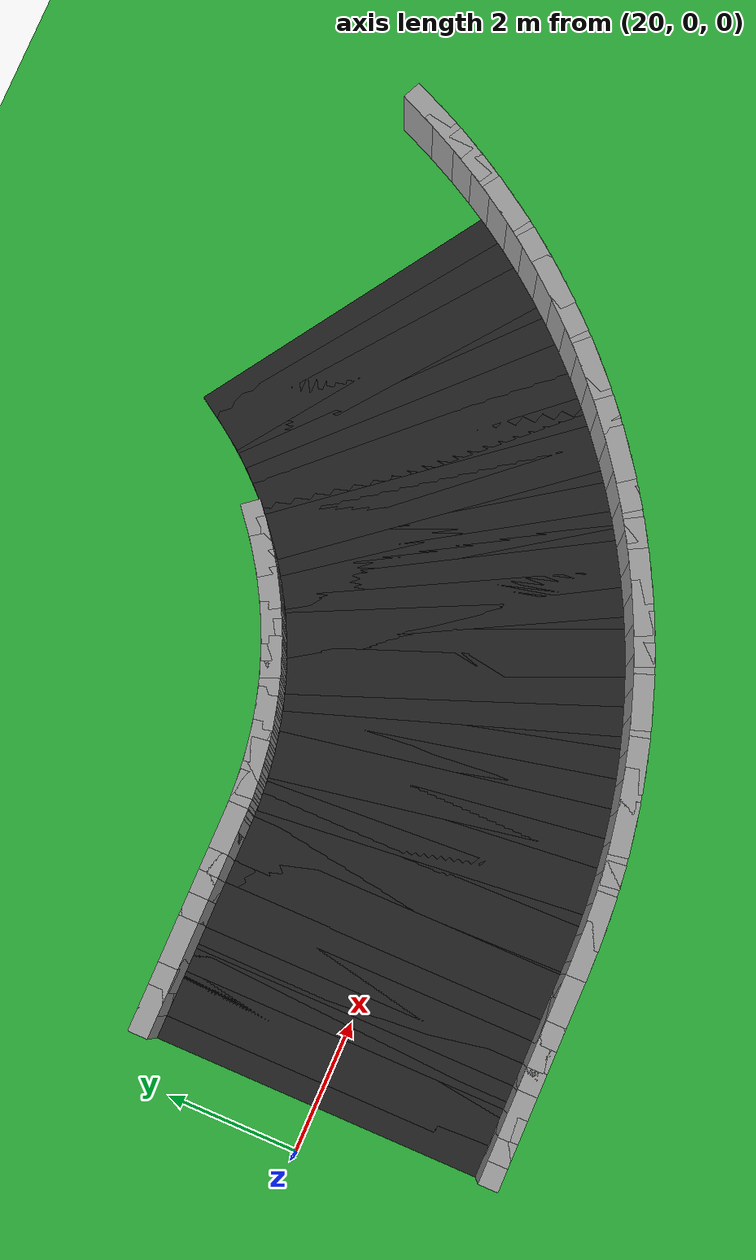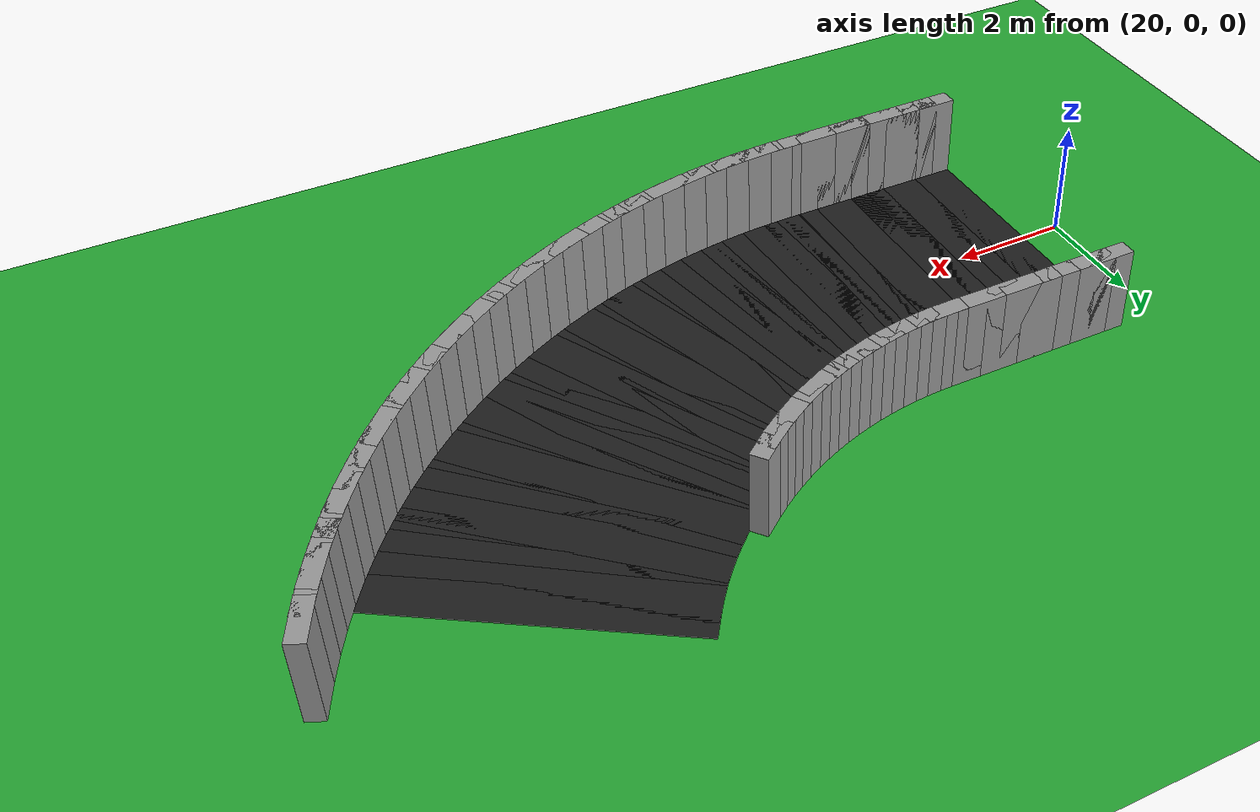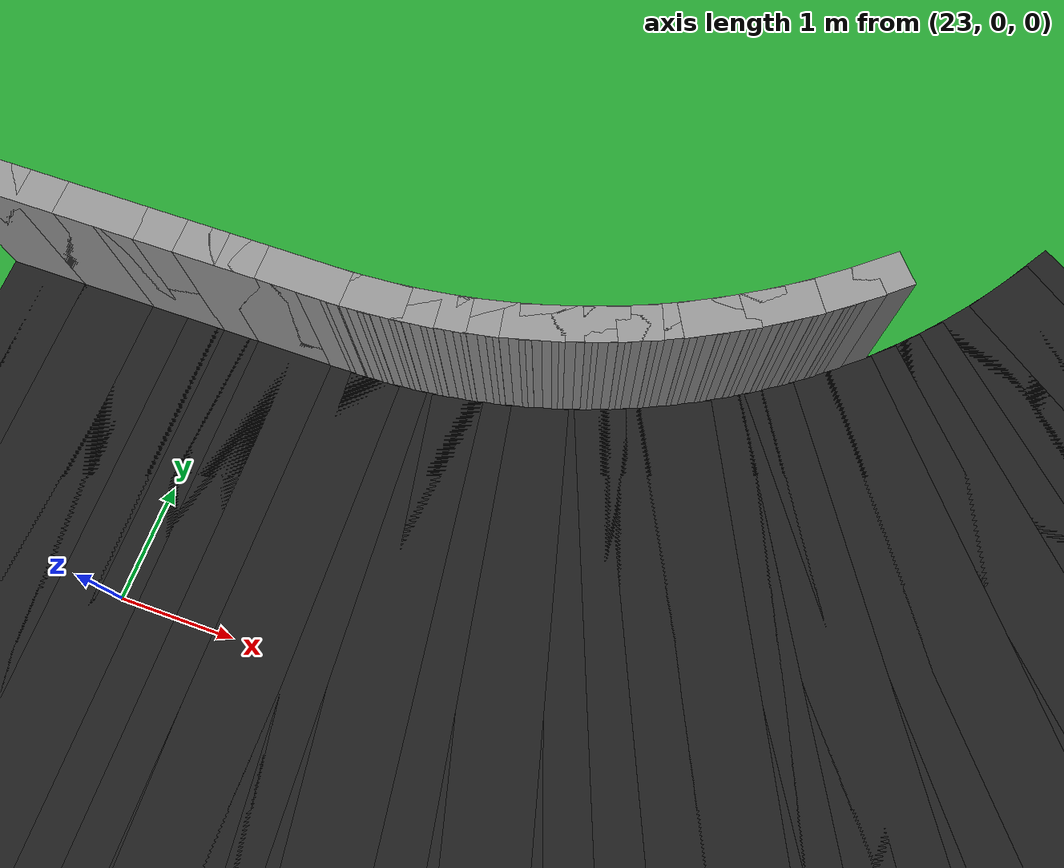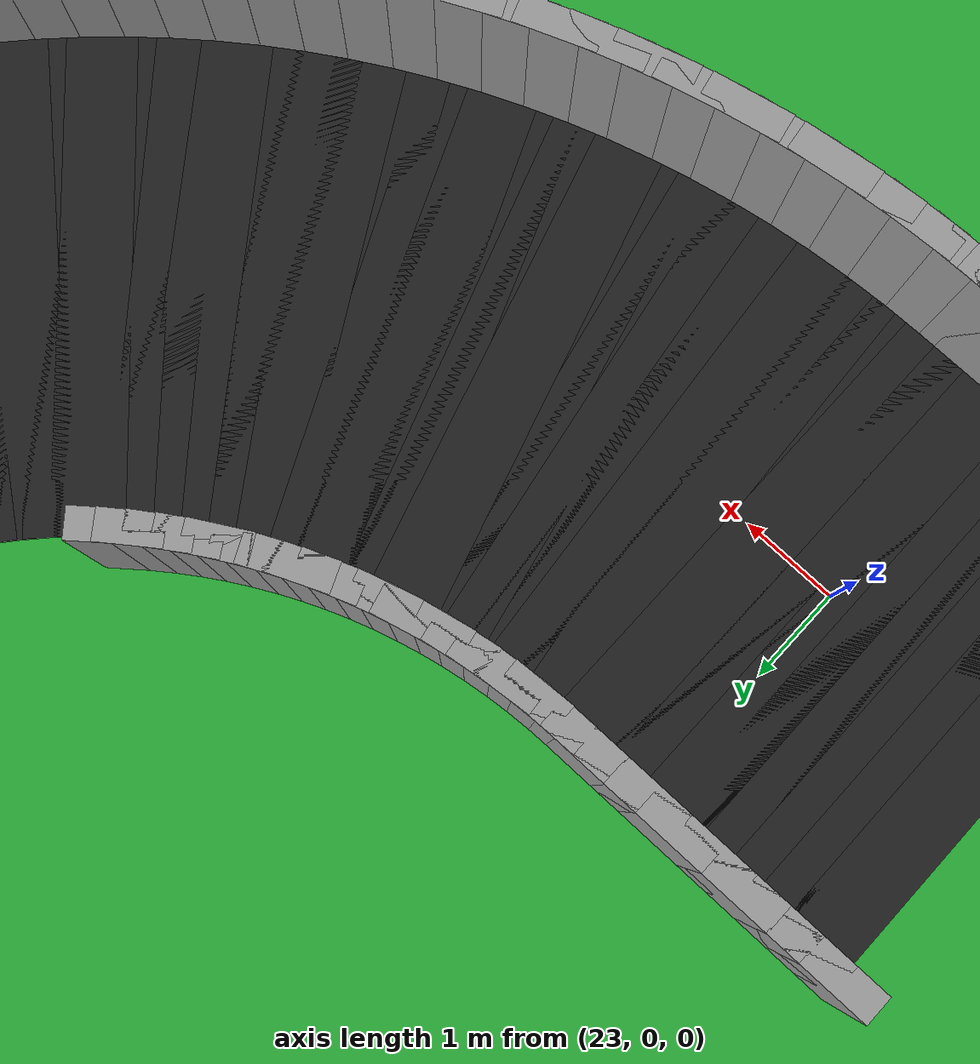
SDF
<sdf version="1.6">
 <world name="loop_stadium">
  <include><uri>model://sun</uri></include>
  <model name="ground_plane">
   <static>true</static>
   <link name="link">
    <collision name="collision">
     <surface><friction><ode><mu>100</mu><mu2>50</mu2></ode></friction></surface>
     <geometry><plane><normal>0 0 1</normal><size>120 120</size></plane></geometry>
    </collision>
    <visual name="visual">
     <geometry><plane><normal>0 0 1</normal><size>120 120</size></plane></geometry>
     <material>
      <script><uri>file://media/materials/scripts/gazebo.material</uri><name>Gazebo/Green</name></script>
     </material>
    </visual>
   </link>
  </model>
  <model name="asphalt_60">
   <static>true</static>
   <pose>21.043 0.000 0.005 0 0 0.00000</pose>
   <link name="link">
    <visual name="visual">
     <geometry><box><size>0.708 5.000 0.010</size></box></geometry>
     <material>
      <script><uri>file://media/materials/scripts/gazebo.material</uri><name>Gazebo/Black</name></script>
     </material>
    </visual>
   </link>
  </model>
  <model name="curbL_60">
   <static>true</static>
   <pose>21.043 2.650 0.750 0 0 0.00000</pose>
   <link name="link">
    <collision name="collision"><geometry><box><size>0.708 0.300 1.500</size></box></geometry></collision>
    <visual name="visual">
     <geometry><box><size>0.708 0.300 1.500</size></box></geometry>
     <material>
      <script><uri>file://media/materials/scripts/gazebo.material</uri><name>Gazebo/Grey</name></script>
     </material>
    </visual>
   </link>
  </model>
  <model name="curbR_60">
   <static>true</static>
   <pose>21.043 -2.650 0.750 0 0 0.00000</pose>
   <link name="link">
    <collision name="collision"><geometry><box><size>0.708 0.300 1.500</size></box></geometry></collision>
    <visual name="visual">
     <geometry><box><size>0.708 0.300 1.500</size></box></geometry>
     <material>
      <script><uri>file://media/materials/scripts/gazebo.material</uri><name>Gazebo/Grey</name></script>
     </material>
    </visual>
   </link>
  </model>
  <model name="asphalt_61">
   <static>true</static>
   <pose>21.391 0.000 0.005 0 0 0.00000</pose>
   <link name="link">
    <visual name="visual">
     <geometry><box><size>0.708 5.000 0.010</size></box></geometry>
     <material>
      <script><uri>file://media/materials/scripts/gazebo.material</uri><name>Gazebo/Black</name></script>
     </material>
    </visual>
   </link>
  </model>
  <model name="curbL_61">
   <static>true</static>
   <pose>21.391 2.650 0.750 0 0 0.00000</pose>
   <link name="link">
    <collision name="collision"><geometry><box><size>0.708 0.300 1.500</size></box></geometry></collision>
    <visual name="visual">
     <geometry><box><size>0.708 0.300 1.500</size></box></geometry>
     <material>
      <script><uri>file://media/materials/scripts/gazebo.material</uri><name>Gazebo/Grey</name></script>
     </material>
    </visual>
   </link>
  </model>
  <model name="curbR_61">
   <static>true</static>
   <pose>21.391 -2.650 0.750 0 0 0.00000</pose>
   <link name="link">
    <collision name="collision"><geometry><box><size>0.708 0.300 1.500</size></box></geometry></collision>
    <visual name="visual">
     <geometry><box><size>0.708 0.300 1.500</size></box></geometry>
     <material>
      <script><uri>file://media/materials/scripts/gazebo.material</uri><name>Gazebo/Grey</name></script>
     </material>
    </visual>
   </link>
  </model>
  <model name="asphalt_62">
   <static>true</static>
   <pose>21.739 0.000 0.005 0 0 0.00000</pose>
   <link name="link">
    <visual name="visual">
     <geometry><box><size>0.708 5.000 0.010</size></box></geometry>
     <material>
      <script><uri>file://media/materials/scripts/gazebo.material</uri><name>Gazebo/Black</name></script>
     </material>
    </visual>
   </link>
  </model>
  <model name="curbL_62">
   <static>true</static>
   <pose>21.739 2.650 0.750 0 0 0.00000</pose>
   <link name="link">
    <collision name="collision"><geometry><box><size>0.708 0.300 1.500</size></box></geometry></collision>
    <visual name="visual">
     <geometry><box><size>0.708 0.300 1.500</size></box></geometry>
     <material>
      <script><uri>file://media/materials/scripts/gazebo.material</uri><name>Gazebo/Grey</name></script>
     </material>
    </visual>
   </link>
  </model>
  <model name="curbR_62">
   <static>true</static>
   <pose>21.739 -2.650 0.750 0 0 0.00000</pose>
   <link name="link">
    <collision name="collision"><geometry><box><size>0.708 0.300 1.500</size></box></geometry></collision>
    <visual name="visual">
     <geometry><box><size>0.708 0.300 1.500</size></box></geometry>
     <material>
      <script><uri>file://media/materials/scripts/gazebo.material</uri><name>Gazebo/Grey</name></script>
     </material>
    </visual>
   </link>
  </model>
  <model name="asphalt_63">
   <static>true</static>
   <pose>22.087 0.000 0.005 0 0 0.00000</pose>
   <link name="link">
    <visual name="visual">
     <geometry><box><size>0.708 5.000 0.010</size></box></geometry>
     <material>
      <script><uri>file://media/materials/scripts/gazebo.material</uri><name>Gazebo/Black</name></script>
     </material>
    </visual>
   </link>
  </model>
  <model name="curbL_63">
   <static>true</static>
   <pose>22.087 2.650 0.750 0 0 0.00000</pose>
   <link name="link">
    <collision name="collision"><geometry><box><size>0.708 0.300 1.500</size></box></geometry></collision>
    <visual name="visual">
     <geometry><box><size>0.708 0.300 1.500</size></box></geometry>
     <material>
      <script><uri>file://media/materials/scripts/gazebo.material</uri><name>Gazebo/Grey</name></script>
     </material>
    </visual>
   </link>
  </model>
  <model name="curbR_63">
   <static>true</static>
   <pose>22.087 -2.650 0.750 0 0 0.00000</pose>
   <link name="link">
    <collision name="collision"><geometry><box><size>0.708 0.300 1.500</size></box></geometry></collision>
    <visual name="visual">
     <geometry><box><size>0.708 0.300 1.500</size></box></geometry>
     <material>
      <script><uri>file://media/materials/scripts/gazebo.material</uri><name>Gazebo/Grey</name></script>
     </material>
    </visual>
   </link>
  </model>
  <model name="asphalt_64">
   <static>true</static>
   <pose>22.435 0.000 0.005 0 0 0.00000</pose>
   <link name="link">
    <visual name="visual">
     <geometry><box><size>0.708 5.000 0.010</size></box></geometry>
     <material>
      <script><uri>file://media/materials/scripts/gazebo.material</uri><name>Gazebo/Black</name></script>
     </material>
    </visual>
   </link>
  </model>
  <model name="curbL_64">
   <static>true</static>
   <pose>22.435 2.650 0.750 0 0 0.00000</pose>
   <link name="link">
    <collision name="collision"><geometry><box><size>0.708 0.300 1.500</size></box></geometry></collision>
    <visual name="visual">
     <geometry><box><size>0.708 0.300 1.500</size></box></geometry>
     <material>
      <script><uri>file://media/materials/scripts/gazebo.material</uri><name>Gazebo/Grey</name></script>
     </material>
    </visual>
   </link>
  </model>
  <model name="curbR_64">
   <static>true</static>
   <pose>22.435 -2.650 0.750 0 0 0.00000</pose>
   <link name="link">
    <collision name="collision"><geometry><box><size>0.708 0.300 1.500</size></box></geometry></collision>
    <visual name="visual">
     <geometry><box><size>0.708 0.300 1.500</size></box></geometry>
     <material>
      <script><uri>file://media/materials/scripts/gazebo.material</uri><name>Gazebo/Grey</name></script>
     </material>
    </visual>
   </link>
  </model>
  <model name="asphalt_65">
   <static>true</static>
   <pose>22.783 0.000 0.005 0 0 0.00000</pose>
   <link name="link">
    <visual name="visual">
     <geometry><box><size>0.708 5.000 0.010</size></box></geometry>
     <material>
      <script><uri>file://media/materials/scripts/gazebo.material</uri><name>Gazebo/Black</name></script>
     </material>
    </visual>
   </link>
  </model>
  <model name="curbL_65">
   <static>true</static>
   <pose>22.783 2.650 0.750 0 0 0.00000</pose>
   <link name="link">
    <collision name="collision"><geometry><box><size>0.708 0.300 1.500</size></box></geometry></collision>
    <visual name="visual">
     <geometry><box><size>0.708 0.300 1.500</size></box></geometry>
     <material>
      <script><uri>file://media/materials/scripts/gazebo.material</uri><name>Gazebo/Grey</name></script>
     </material>
    </visual>
   </link>
  </model>
  <model name="curbR_65">
   <static>true</static>
   <pose>22.783 -2.650 0.750 0 0 0.00000</pose>
   <link name="link">
    <collision name="collision"><geometry><box><size>0.708 0.300 1.500</size></box></geometry></collision>
    <visual name="visual">
     <geometry><box><size>0.708 0.300 1.500</size></box></geometry>
     <material>
      <script><uri>file://media/materials/scripts/gazebo.material</uri><name>Gazebo/Grey</name></script>
     </material>
    </visual>
   </link>
  </model>
  <model name="asphalt_66">
   <static>true</static>
   <pose>23.130 0.000 0.005 0 0 0.00000</pose>
   <link name="link">
    <visual name="visual">
     <geometry><box><size>0.708 5.000 0.010</size></box></geometry>
     <material>
      <script><uri>file://media/materials/scripts/gazebo.material</uri><name>Gazebo/Black</name></script>
     </material>
    </visual>
   </link>
  </model>
  <model name="curbL_66">
   <static>true</static>
   <pose>23.130 2.650 0.750 0 0 0.00000</pose>
   <link name="link">
    <collision name="collision"><geometry><box><size>0.708 0.300 1.500</size></box></geometry></collision>
    <visual name="visual">
     <geometry><box><size>0.708 0.300 1.500</size></box></geometry>
     <material>
      <script><uri>file://media/materials/scripts/gazebo.material</uri><name>Gazebo/Grey</name></script>
     </material>
    </visual>
   </link>
  </model>
  <model name="curbR_66">
   <static>true</static>
   <pose>23.130 -2.650 0.750 0 0 0.00000</pose>
   <link name="link">
    <collision name="collision"><geometry><box><size>0.708 0.300 1.500</size></box></geometry></collision>
    <visual name="visual">
     <geometry><box><size>0.708 0.300 1.500</size></box></geometry>
     <material>
      <script><uri>file://media/materials/scripts/gazebo.material</uri><name>Gazebo/Grey</name></script>
     </material>
    </visual>
   </link>
  </model>
  <model name="asphalt_67">
   <static>true</static>
   <pose>23.478 0.000 0.005 0 0 0.00000</pose>
   <link name="link">
    <visual name="visual">
     <geometry><box><size>0.708 5.000 0.010</size></box></geometry>
     <material>
      <script><uri>file://media/materials/scripts/gazebo.material</uri><name>Gazebo/Black</name></script>
     </material>
    </visual>
   </link>
  </model>
  <model name="curbL_67">
   <static>true</static>
   <pose>23.478 2.650 0.750 0 0 0.00000</pose>
   <link name="link">
    <collision name="collision"><geometry><box><size>0.708 0.300 1.500</size></box></geometry></collision>
    <visual name="visual">
     <geometry><box><size>0.708 0.300 1.500</size></box></geometry>
     <material>
      <script><uri>file://media/materials/scripts/gazebo.material</uri><name>Gazebo/Grey</name></script>
     </material>
    </visual>
   </link>
  </model>
  <model name="curbR_67">
   <static>true</static>
   <pose>23.478 -2.650 0.750 0 0 0.00000</pose>
   <link name="link">
    <collision name="collision"><geometry><box><size>0.708 0.300 1.500</size></box></geometry></collision>
    <visual name="visual">
     <geometry><box><size>0.708 0.300 1.500</size></box></geometry>
     <material>
      <script><uri>file://media/materials/scripts/gazebo.material</uri><name>Gazebo/Grey</name></script>
     </material>
    </visual>
   </link>
  </model>
  <model name="asphalt_68">
   <static>true</static>
   <pose>23.826 0.000 0.005 0 0 0.00000</pose>
   <link name="link">
    <visual name="visual">
     <geometry><box><size>0.708 5.000 0.010</size></box></geometry>
     <material>
      <script><uri>file://media/materials/scripts/gazebo.material</uri><name>Gazebo/Black</name></script>
     </material>
    </visual>
   </link>
  </model>
  <model name="curbL_68">
   <static>true</static>
   <pose>23.826 2.650 0.750 0 0 0.00000</pose>
   <link name="link">
    <collision name="collision"><geometry><box><size>0.708 0.300 1.500</size></box></geometry></collision>
    <visual name="visual">
     <geometry><box><size>0.708 0.300 1.500</size></box></geometry>
     <material>
      <script><uri>file://media/materials/scripts/gazebo.material</uri><name>Gazebo/Grey</name></script>
     </material>
    </visual>
   </link>
  </model>
  <model name="curbR_68">
   <static>true</static>
   <pose>23.826 -2.650 0.750 0 0 0.00000</pose>
   <link name="link">
    <collision name="collision"><geometry><box><size>0.708 0.300 1.500</size></box></geometry></collision>
    <visual name="visual">
     <geometry><box><size>0.708 0.300 1.500</size></box></geometry>
     <material>
      <script><uri>file://media/materials/scripts/gazebo.material</uri><name>Gazebo/Grey</name></script>
     </material>
    </visual>
   </link>
  </model>
  <model name="asphalt_69">
   <static>true</static>
   <pose>24.175 0.003 0.005 0 0 0.01939</pose>
   <link name="link">
    <visual name="visual">
     <geometry><box><size>0.709 5.000 0.010</size></box></geometry>
     <material>
      <script><uri>file://media/materials/scripts/gazebo.material</uri><name>Gazebo/Black</name></script>
     </material>
    </visual>
   </link>
  </model>
  <model name="curbL_69">
   <static>true</static>
   <pose>24.123 2.652 0.750 0 0 0.01939</pose>
   <link name="link">
    <collision name="collision"><geometry><box><size>0.606 0.300 1.500</size></box></geometry></collision>
    <visual name="visual">
     <geometry><box><size>0.606 0.300 1.500</size></box></geometry>
     <material>
      <script><uri>file://media/materials/scripts/gazebo.material</uri><name>Gazebo/Grey</name></script>
     </material>
    </visual>
   </link>
  </model>
  <model name="curbR_69">
   <static>true</static>
   <pose>24.226 -2.646 0.750 0 0 0.01939</pose>
   <link name="link">
    <collision name="collision"><geometry><box><size>0.812 0.300 1.500</size></box></geometry></collision>
    <visual name="visual">
     <geometry><box><size>0.812 0.300 1.500</size></box></geometry>
     <material>
      <script><uri>file://media/materials/scripts/gazebo.material</uri><name>Gazebo/Grey</name></script>
     </material>
    </visual>
   </link>
  </model>
  <model name="asphalt_70">
   <static>true</static>
   <pose>24.523 0.017 0.005 0 0 0.05818</pose>
   <link name="link">
    <visual name="visual">
     <geometry><box><size>0.709 5.000 0.010</size></box></geometry>
     <material>
      <script><uri>file://media/materials/scripts/gazebo.material</uri><name>Gazebo/Black</name></script>
     </material>
    </visual>
   </link>
  </model>
  <model name="curbL_70">
   <static>true</static>
   <pose>24.369 2.662 0.750 0 0 0.05818</pose>
   <link name="link">
    <collision name="collision"><geometry><box><size>0.606 0.300 1.500</size></box></geometry></collision>
    <visual name="visual">
     <geometry><box><size>0.606 0.300 1.500</size></box></geometry>
     <material>
      <script><uri>file://media/materials/scripts/gazebo.material</uri><name>Gazebo/Grey</name></script>
     </material>
    </visual>
   </link>
  </model>
  <model name="curbR_70">
   <static>true</static>
   <pose>24.677 -2.628 0.750 0 0 0.05818</pose>
   <link name="link">
    <collision name="collision"><geometry><box><size>0.812 0.300 1.500</size></box></geometry></collision>
    <visual name="visual">
     <geometry><box><size>0.812 0.300 1.500</size></box></geometry>
     <material>
      <script><uri>file://media/materials/scripts/gazebo.material</uri><name>Gazebo/Grey</name></script>
     </material>
    </visual>
   </link>
  </model>
  <model name="asphalt_71">
   <static>true</static>
   <pose>24.871 0.044 0.005 0 0 0.09696</pose>
   <link name="link">
    <visual name="visual">
     <geometry><box><size>0.709 5.000 0.010</size></box></geometry>
     <material>
      <script><uri>file://media/materials/scripts/gazebo.material</uri><name>Gazebo/Black</name></script>
     </material>
    </visual>
   </link>
  </model>
  <model name="curbL_71">
   <static>true</static>
   <pose>24.615 2.681 0.750 0 0 0.09696</pose>
   <link name="link">
    <collision name="collision"><geometry><box><size>0.606 0.300 1.500</size></box></geometry></collision>
    <visual name="visual">
     <geometry><box><size>0.606 0.300 1.500</size></box></geometry>
     <material>
      <script><uri>file://media/materials/scripts/gazebo.material</uri><name>Gazebo/Grey</name></script>
     </material>
    </visual>
   </link>
  </model>
  <model name="curbR_71">
   <static>true</static>
   <pose>25.128 -2.593 0.750 0 0 0.09696</pose>
   <link name="link">
    <collision name="collision"><geometry><box><size>0.812 0.300 1.500</size></box></geometry></collision>
    <visual name="visual">
     <geometry><box><size>0.812 0.300 1.500</size></box></geometry>
     <material>
      <script><uri>file://media/materials/scripts/gazebo.material</uri><name>Gazebo/Grey</name></script>
     </material>
    </visual>
   </link>
  </model>
  <model name="asphalt_72">
   <static>true</static>
   <pose>25.218 0.084 0.005 0 0 0.13575</pose>
   <link name="link">
    <visual name="visual">
     <geometry><box><size>0.709 5.000 0.010</size></box></geometry>
     <material>
      <script><uri>file://media/materials/scripts/gazebo.material</uri><name>Gazebo/Black</name></script>
     </material>
    </visual>
   </link>
  </model>
  <model name="curbL_72">
   <static>true</static>
   <pose>24.859 2.710 0.750 0 0 0.13575</pose>
   <link name="link">
    <collision name="collision"><geometry><box><size>0.606 0.300 1.500</size></box></geometry></collision>
    <visual name="visual">
     <geometry><box><size>0.606 0.300 1.500</size></box></geometry>
     <material>
      <script><uri>file://media/materials/scripts/gazebo.material</uri><name>Gazebo/Grey</name></script>
     </material>
    </visual>
   </link>
  </model>
  <model name="curbR_72">
   <static>true</static>
   <pose>25.576 -2.541 0.750 0 0 0.13575</pose>
   <link name="link">
    <collision name="collision"><geometry><box><size>0.812 0.300 1.500</size></box></geometry></collision>
    <visual name="visual">
     <geometry><box><size>0.812 0.300 1.500</size></box></geometry>
     <material>
      <script><uri>file://media/materials/scripts/gazebo.material</uri><name>Gazebo/Grey</name></script>
     </material>
    </visual>
   </link>
  </model>
  <model name="asphalt_73">
   <static>true</static>
   <pose>25.563 0.138 0.005 0 0 0.17453</pose>
   <link name="link">
    <visual name="visual">
     <geometry><box><size>0.709 5.000 0.010</size></box></geometry>
     <material>
      <script><uri>file://media/materials/scripts/gazebo.material</uri><name>Gazebo/Black</name></script>
     </material>
    </visual>
   </link>
  </model>
  <model name="curbL_73">
   <static>true</static>
   <pose>25.103 2.748 0.750 0 0 0.17453</pose>
   <link name="link">
    <collision name="collision"><geometry><box><size>0.606 0.300 1.500</size></box></geometry></collision>
    <visual name="visual">
     <geometry><box><size>0.606 0.300 1.500</size></box></geometry>
     <material>
      <script><uri>file://media/materials/scripts/gazebo.material</uri><name>Gazebo/Grey</name></script>
     </material>
    </visual>
   </link>
  </model>
  <model name="curbR_73">
   <static>true</static>
   <pose>26.023 -2.471 0.750 0 0 0.17453</pose>
   <link name="link">
    <collision name="collision"><geometry><box><size>0.812 0.300 1.500</size></box></geometry></collision>
    <visual name="visual">
     <geometry><box><size>0.812 0.300 1.500</size></box></geometry>
     <material>
      <script><uri>file://media/materials/scripts/gazebo.material</uri><name>Gazebo/Grey</name></script>
     </material>
    </visual>
   </link>
  </model>
  <model name="asphalt_74">
   <static>true</static>
   <pose>25.905 0.206 0.005 0 0 0.21332</pose>
   <link name="link">
    <visual name="visual">
     <geometry><box><size>0.709 5.000 0.010</size></box></geometry>
     <material>
      <script><uri>file://media/materials/scripts/gazebo.material</uri><name>Gazebo/Black</name></script>
     </material>
    </visual>
   </link>
  </model>
  <model name="curbL_74">
   <static>true</static>
   <pose>25.344 2.795 0.750 0 0 0.21332</pose>
   <link name="link">
    <collision name="collision"><geometry><box><size>0.606 0.300 1.500</size></box></geometry></collision>
    <visual name="visual">
     <geometry><box><size>0.606 0.300 1.500</size></box></geometry>
     <material>
      <script><uri>file://media/materials/scripts/gazebo.material</uri><name>Gazebo/Grey</name></script>
     </material>
    </visual>
   </link>
  </model>
  <model name="curbR_74">
   <static>true</static>
   <pose>26.466 -2.384 0.750 0 0 0.21332</pose>
   <link name="link">
    <collision name="collision"><geometry><box><size>0.812 0.300 1.500</size></box></geometry></collision>
    <visual name="visual">
     <geometry><box><size>0.812 0.300 1.500</size></box></geometry>
     <material>
      <script><uri>file://media/materials/scripts/gazebo.material</uri><name>Gazebo/Grey</name></script>
     </material>
    </visual>
   </link>
  </model>
  <model name="asphalt_75">
   <static>true</static>
   <pose>26.245 0.286 0.005 0 0 0.25210</pose>
   <link name="link">
    <visual name="visual">
     <geometry><box><size>0.709 5.000 0.010</size></box></geometry>
     <material>
      <script><uri>file://media/materials/scripts/gazebo.material</uri><name>Gazebo/Black</name></script>
     </material>
    </visual>
   </link>
  </model>
  <model name="curbL_75">
   <static>true</static>
   <pose>25.584 2.852 0.750 0 0 0.25210</pose>
   <link name="link">
    <collision name="collision"><geometry><box><size>0.606 0.300 1.500</size></box></geometry></collision>
    <visual name="visual">
     <geometry><box><size>0.606 0.300 1.500</size></box></geometry>
     <material>
      <script><uri>file://media/materials/scripts/gazebo.material</uri><name>Gazebo/Grey</name></script>
     </material>
    </visual>
   </link>
  </model>
  <model name="curbR_75">
   <static>true</static>
   <pose>26.906 -2.280 0.750 0 0 0.25210</pose>
   <link name="link">
    <collision name="collision"><geometry><box><size>0.812 0.300 1.500</size></box></geometry></collision>
    <visual name="visual">
     <geometry><box><size>0.812 0.300 1.500</size></box></geometry>
     <material>
      <script><uri>file://media/materials/scripts/gazebo.material</uri><name>Gazebo/Grey</name></script>
     </material>
    </visual>
   </link>
  </model>
  <model name="asphalt_76">
   <static>true</static>
   <pose>26.581 0.380 0.005 0 0 0.29089</pose>
   <link name="link">
    <visual name="visual">
     <geometry><box><size>0.709 5.000 0.010</size></box></geometry>
     <material>
      <script><uri>file://media/materials/scripts/gazebo.material</uri><name>Gazebo/Black</name></script>
     </material>
    </visual>
   </link>
  </model>
  <model name="curbL_76">
   <static>true</static>
   <pose>25.821 2.918 0.750 0 0 0.29089</pose>
   <link name="link">
    <collision name="collision"><geometry><box><size>0.606 0.300 1.500</size></box></geometry></collision>
    <visual name="visual">
     <geometry><box><size>0.606 0.300 1.500</size></box></geometry>
     <material>
      <script><uri>file://media/materials/scripts/gazebo.material</uri><name>Gazebo/Grey</name></script>
     </material>
    </visual>
   </link>
  </model>
  <model name="curbR_76">
   <static>true</static>
   <pose>27.341 -2.158 0.750 0 0 0.29089</pose>
   <link name="link">
    <collision name="collision"><geometry><box><size>0.812 0.300 1.500</size></box></geometry></collision>
    <visual name="visual">
     <geometry><box><size>0.812 0.300 1.500</size></box></geometry>
     <material>
      <script><uri>file://media/materials/scripts/gazebo.material</uri><name>Gazebo/Grey</name></script>
     </material>
    </visual>
   </link>
  </model>
  <model name="asphalt_77">
   <static>true</static>
   <pose>26.913 0.486 0.005 0 0 0.32967</pose>
   <link name="link">
    <visual name="visual">
     <geometry><box><size>0.709 5.000 0.010</size></box></geometry>
     <material>
      <script><uri>file://media/materials/scripts/gazebo.material</uri><name>Gazebo/Black</name></script>
     </material>
    </visual>
   </link>
  </model>
  <model name="curbL_77">
   <static>true</static>
   <pose>26.056 2.993 0.750 0 0 0.32967</pose>
   <link name="link">
    <collision name="collision"><geometry><box><size>0.606 0.300 1.500</size></box></geometry></collision>
    <visual name="visual">
     <geometry><box><size>0.606 0.300 1.500</size></box></geometry>
     <material>
      <script><uri>file://media/materials/scripts/gazebo.material</uri><name>Gazebo/Grey</name></script>
     </material>
    </visual>
   </link>
  </model>
  <model name="curbR_77">
   <static>true</static>
   <pose>27.771 -2.021 0.750 0 0 0.32967</pose>
   <link name="link">
    <collision name="collision"><geometry><box><size>0.812 0.300 1.500</size></box></geometry></collision>
    <visual name="visual">
     <geometry><box><size>0.812 0.300 1.500</size></box></geometry>
     <material>
      <script><uri>file://media/materials/scripts/gazebo.material</uri><name>Gazebo/Grey</name></script>
     </material>
    </visual>
   </link>
  </model>
  <model name="asphalt_78">
   <static>true</static>
   <pose>27.241 0.606 0.005 0 0 0.36846</pose>
   <link name="link">
    <visual name="visual">
     <geometry><box><size>0.709 5.000 0.010</size></box></geometry>
     <material>
      <script><uri>file://media/materials/scripts/gazebo.material</uri><name>Gazebo/Black</name></script>
     </material>
    </visual>
   </link>
  </model>
  <model name="curbL_78">
   <static>true</static>
   <pose>26.287 3.077 0.750 0 0 0.36846</pose>
   <link name="link">
    <collision name="collision"><geometry><box><size>0.606 0.300 1.500</size></box></geometry></collision>
    <visual name="visual">
     <geometry><box><size>0.606 0.300 1.500</size></box></geometry>
     <material>
      <script><uri>file://media/materials/scripts/gazebo.material</uri><name>Gazebo/Grey</name></script>
     </material>
    </visual>
   </link>
  </model>
  <model name="curbR_78">
   <static>true</static>
   <pose>28.195 -1.866 0.750 0 0 0.36846</pose>
   <link name="link">
    <collision name="collision"><geometry><box><size>0.812 0.300 1.500</size></box></geometry></collision>
    <visual name="visual">
     <geometry><box><size>0.812 0.300 1.500</size></box></geometry>
     <material>
      <script><uri>file://media/materials/scripts/gazebo.material</uri><name>Gazebo/Grey</name></script>
     </material>
    </visual>
   </link>
  </model>
  <model name="asphalt_79">
   <static>true</static>
   <pose>27.564 0.738 0.005 0 0 0.40724</pose>
   <link name="link">
    <visual name="visual">
     <geometry><box><size>0.709 5.000 0.010</size></box></geometry>
     <material>
      <script><uri>file://media/materials/scripts/gazebo.material</uri><name>Gazebo/Black</name></script>
     </material>
    </visual>
   </link>
  </model>
  <model name="curbL_79">
   <static>true</static>
   <pose>26.515 3.170 0.750 0 0 0.40724</pose>
   <link name="link">
    <collision name="collision"><geometry><box><size>0.606 0.300 1.500</size></box></geometry></collision>
    <visual name="visual">
     <geometry><box><size>0.606 0.300 1.500</size></box></geometry>
     <material>
      <script><uri>file://media/materials/scripts/gazebo.material</uri><name>Gazebo/Grey</name></script>
     </material>
    </visual>
   </link>
  </model>
  <model name="curbR_79">
   <static>true</static>
   <pose>28.614 -1.695 0.750 0 0 0.40724</pose>
   <link name="link">
    <collision name="collision"><geometry><box><size>0.812 0.300 1.500</size></box></geometry></collision>
    <visual name="visual">
     <geometry><box><size>0.812 0.300 1.500</size></box></geometry>
     <material>
      <script><uri>file://media/materials/scripts/gazebo.material</uri><name>Gazebo/Grey</name></script>
     </material>
    </visual>
   </link>
  </model>
  <model name="asphalt_80">
   <static>true</static>
   <pose>27.882 0.882 0.005 0 0 0.44603</pose>
   <link name="link">
    <visual name="visual">
     <geometry><box><size>0.709 5.000 0.010</size></box></geometry>
     <material>
      <script><uri>file://media/materials/scripts/gazebo.material</uri><name>Gazebo/Black</name></script>
     </material>
    </visual>
   </link>
  </model>
  <model name="curbL_80">
   <static>true</static>
   <pose>26.739 3.272 0.750 0 0 0.44603</pose>
   <link name="link">
    <collision name="collision"><geometry><box><size>0.606 0.300 1.500</size></box></geometry></collision>
    <visual name="visual">
     <geometry><box><size>0.606 0.300 1.500</size></box></geometry>
     <material>
      <script><uri>file://media/materials/scripts/gazebo.material</uri><name>Gazebo/Grey</name></script>
     </material>
    </visual>
   </link>
  </model>
  <model name="curbR_80">
   <static>true</static>
   <pose>29.025 -1.508 0.750 0 0 0.44603</pose>
   <link name="link">
    <collision name="collision"><geometry><box><size>0.812 0.300 1.500</size></box></geometry></collision>
    <visual name="visual">
     <geometry><box><size>0.812 0.300 1.500</size></box></geometry>
     <material>
      <script><uri>file://media/materials/scripts/gazebo.material</uri><name>Gazebo/Grey</name></script>
     </material>
    </visual>
   </link>
  </model>
  <model name="asphalt_81">
   <static>true</static>
   <pose>28.194 1.039 0.005 0 0 0.48481</pose>
   <link name="link">
    <visual name="visual">
     <geometry><box><size>0.709 5.000 0.010</size></box></geometry>
     <material>
      <script><uri>file://media/materials/scripts/gazebo.material</uri><name>Gazebo/Black</name></script>
     </material>
    </visual>
   </link>
  </model>
  <model name="curbL_81">
   <static>true</static>
   <pose>26.959 3.383 0.750 0 0 0.48481</pose>
   <link name="link">
    <collision name="collision"><geometry><box><size>0.606 0.300 1.500</size></box></geometry></collision>
    <visual name="visual">
     <geometry><box><size>0.606 0.300 1.500</size></box></geometry>
     <material>
      <script><uri>file://media/materials/scripts/gazebo.material</uri><name>Gazebo/Grey</name></script>
     </material>
    </visual>
   </link>
  </model>
  <model name="curbR_81">
   <static>true</static>
   <pose>29.429 -1.305 0.750 0 0 0.48481</pose>
   <link name="link">
    <collision name="collision"><geometry><box><size>0.812 0.300 1.500</size></box></geometry></collision>
    <visual name="visual">
     <geometry><box><size>0.812 0.300 1.500</size></box></geometry>
     <material>
      <script><uri>file://media/materials/scripts/gazebo.material</uri><name>Gazebo/Grey</name></script>
     </material>
    </visual>
   </link>
  </model>
  <model name="asphalt_82">
   <static>true</static>
   <pose>28.499 1.207 0.005 0 0 0.52360</pose>
   <link name="link">
    <visual name="visual">
     <geometry><box><size>0.709 5.000 0.010</size></box></geometry>
     <material>
      <script><uri>file://media/materials/scripts/gazebo.material</uri><name>Gazebo/Black</name></script>
     </material>
    </visual>
   </link>
  </model>
  <model name="curbL_82">
   <static>true</static>
   <pose>27.175 3.502 0.750 0 0 0.52360</pose>
   <link name="link">
    <collision name="collision"><geometry><box><size>0.606 0.300 1.500</size></box></geometry></collision>
    <visual name="visual">
     <geometry><box><size>0.606 0.300 1.500</size></box></geometry>
     <material>
      <script><uri>file://media/materials/scripts/gazebo.material</uri><name>Gazebo/Grey</name></script>
     </material>
    </visual>
   </link>
  </model>
  <model name="curbR_82">
   <static>true</static>
   <pose>29.824 -1.087 0.750 0 0 0.52360</pose>
   <link name="link">
    <collision name="collision"><geometry><box><size>0.812 0.300 1.500</size></box></geometry></collision>
    <visual name="visual">
     <geometry><box><size>0.812 0.300 1.500</size></box></geometry>
     <material>
      <script><uri>file://media/materials/scripts/gazebo.material</uri><name>Gazebo/Grey</name></script>
     </material>
    </visual>
   </link>
  </model>
  <model name="asphalt_83">
   <static>true</static>
   <pose>28.798 1.388 0.005 0 0 0.56238</pose>
   <link name="link">
    <visual name="visual">
     <geometry><box><size>0.709 5.000 0.010</size></box></geometry>
     <material>
      <script><uri>file://media/materials/scripts/gazebo.material</uri><name>Gazebo/Black</name></script>
     </material>
    </visual>
   </link>
  </model>
  <model name="curbL_83">
   <static>true</static>
   <pose>27.386 3.629 0.750 0 0 0.56238</pose>
   <link name="link">
    <collision name="collision"><geometry><box><size>0.606 0.300 1.500</size></box></geometry></collision>
    <visual name="visual">
     <geometry><box><size>0.606 0.300 1.500</size></box></geometry>
     <material>
      <script><uri>file://media/materials/scripts/gazebo.material</uri><name>Gazebo/Grey</name></script>
     </material>
    </visual>
   </link>
  </model>
  <model name="curbR_83">
   <static>true</static>
   <pose>30.211 -0.854 0.750 0 0 0.56238</pose>
   <link name="link">
    <collision name="collision"><geometry><box><size>0.812 0.300 1.500</size></box></geometry></collision>
    <visual name="visual">
     <geometry><box><size>0.812 0.300 1.500</size></box></geometry>
     <material>
      <script><uri>file://media/materials/scripts/gazebo.material</uri><name>Gazebo/Grey</name></script>
     </material>
    </visual>
   </link>
  </model>
  <model name="asphalt_84">
   <static>true</static>
   <pose>29.090 1.579 0.005 0 0 0.60117</pose>
   <link name="link">
    <visual name="visual">
     <geometry><box><size>0.709 5.000 0.010</size></box></geometry>
     <material>
      <script><uri>file://media/materials/scripts/gazebo.material</uri><name>Gazebo/Black</name></script>
     </material>
    </visual>
   </link>
  </model>
  <model name="curbL_84">
   <static>true</static>
   <pose>27.591 3.764 0.750 0 0 0.60117</pose>
   <link name="link">
    <collision name="collision"><geometry><box><size>0.606 0.300 1.500</size></box></geometry></collision>
    <visual name="visual">
     <geometry><box><size>0.606 0.300 1.500</size></box></geometry>
     <material>
      <script><uri>file://media/materials/scripts/gazebo.material</uri><name>Gazebo/Grey</name></script>
     </material>
    </visual>
   </link>
  </model>
  <model name="curbR_84">
   <static>true</static>
   <pose>30.588 -0.606 0.750 0 0 0.60117</pose>
   <link name="link">
    <collision name="collision"><geometry><box><size>0.812 0.300 1.500</size></box></geometry></collision>
    <visual name="visual">
     <geometry><box><size>0.812 0.300 1.500</size></box></geometry>
     <material>
      <script><uri>file://media/materials/scripts/gazebo.material</uri><name>Gazebo/Grey</name></script>
     </material>
    </visual>
   </link>
  </model>
  <model name="asphalt_85">
   <static>true</static>
   <pose>29.374 1.782 0.005 0 0 0.63995</pose>
   <link name="link">
    <visual name="visual">
     <geometry><box><size>0.709 5.000 0.010</size></box></geometry>
     <material>
      <script><uri>file://media/materials/scripts/gazebo.material</uri><name>Gazebo/Black</name></script>
     </material>
    </visual>
   </link>
  </model>
  <model name="curbL_85">
   <static>true</static>
   <pose>27.792 3.908 0.750 0 0 0.63995</pose>
   <link name="link">
    <collision name="collision"><geometry><box><size>0.606 0.300 1.500</size></box></geometry></collision>
    <visual name="visual">
     <geometry><box><size>0.606 0.300 1.500</size></box></geometry>
     <material>
      <script><uri>file://media/materials/scripts/gazebo.material</uri><name>Gazebo/Grey</name></script>
     </material>
    </visual>
   </link>
  </model>
  <model name="curbR_85">
   <static>true</static>
   <pose>30.956 -0.343 0.750 0 0 0.63995</pose>
   <link name="link">
    <collision name="collision"><geometry><box><size>0.812 0.300 1.500</size></box></geometry></collision>
    <visual name="visual">
     <geometry><box><size>0.812 0.300 1.500</size></box></geometry>
     <material>
      <script><uri>file://media/materials/scripts/gazebo.material</uri><name>Gazebo/Grey</name></script>
     </material>
    </visual>
   </link>
  </model>
  <model name="asphalt_86">
   <static>true</static>
   <pose>29.650 1.996 0.005 0 0 0.67874</pose>
   <link name="link">
    <visual name="visual">
     <geometry><box><size>0.709 5.000 0.010</size></box></geometry>
     <material>
      <script><uri>file://media/materials/scripts/gazebo.material</uri><name>Gazebo/Black</name></script>
     </material>
    </visual>
   </link>
  </model>
  <model name="curbL_86">
   <static>true</static>
   <pose>27.986 4.058 0.750 0 0 0.67874</pose>
   <link name="link">
    <collision name="collision"><geometry><box><size>0.606 0.300 1.500</size></box></geometry></collision>
    <visual name="visual">
     <geometry><box><size>0.606 0.300 1.500</size></box></geometry>
     <material>
      <script><uri>file://media/materials/scripts/gazebo.material</uri><name>Gazebo/Grey</name></script>
     </material>
    </visual>
   </link>
  </model>
  <model name="curbR_86">
   <static>true</static>
   <pose>31.313 -0.066 0.750 0 0 0.67874</pose>
   <link name="link">
    <collision name="collision"><geometry><box><size>0.812 0.300 1.500</size></box></geometry></collision>
    <visual name="visual">
     <geometry><box><size>0.812 0.300 1.500</size></box></geometry>
     <material>
      <script><uri>file://media/materials/scripts/gazebo.material</uri><name>Gazebo/Grey</name></script>
     </material>
    </visual>
   </link>
  </model>
  <model name="asphalt_87">
   <static>true</static>
   <pose>29.917 2.220 0.005 0 0 0.71752</pose>
   <link name="link">
    <visual name="visual">
     <geometry><box><size>0.709 5.000 0.010</size></box></geometry>
     <material>
      <script><uri>file://media/materials/scripts/gazebo.material</uri><name>Gazebo/Black</name></script>
     </material>
    </visual>
   </link>
  </model>
  <model name="curbR_87">
   <static>true</static>
   <pose>31.659 0.224 0.750 0 0 0.71752</pose>
   <link name="link">
    <collision name="collision"><geometry><box><size>0.812 0.300 1.500</size></box></geometry></collision>
    <visual name="visual">
     <geometry><box><size>0.812 0.300 1.500</size></box></geometry>
     <material>
      <script><uri>file://media/materials/scripts/gazebo.material</uri><name>Gazebo/Grey</name></script>
     </material>
    </visual>
   </link>
  </model>
  <model name="asphalt_88">
   <static>true</static>
   <pose>30.175 2.455 0.005 0 0 0.75631</pose>
   <link name="link">
    <visual name="visual">
     <geometry><box><size>0.709 5.000 0.010</size></box></geometry>
     <material>
      <script><uri>file://media/materials/scripts/gazebo.material</uri><name>Gazebo/Black</name></script>
     </material>
    </visual>
   </link>
  </model>
  <model name="curbR_88">
   <static>true</static>
   <pose>31.994 0.528 0.750 0 0 0.75631</pose>
   <link name="link">
    <collision name="collision"><geometry><box><size>0.812 0.300 1.500</size></box></geometry></collision>
    <visual name="visual">
     <geometry><box><size>0.812 0.300 1.500</size></box></geometry>
     <material>
      <script><uri>file://media/materials/scripts/gazebo.material</uri><name>Gazebo/Grey</name></script>
     </material>
    </visual>
   </link>
  </model>
  <model name="asphalt_89">
   <static>true</static>
   <pose>30.425 2.699 0.005 0 0 0.79509</pose>
   <link name="link">
    <visual name="visual">
     <geometry><box><size>0.709 5.000 0.010</size></box></geometry>
     <material>
      <script><uri>file://media/materials/scripts/gazebo.material</uri><name>Gazebo/Black</name></script>
     </material>
    </visual>
   </link>
  </model>
  <model name="curbR_89">
   <static>true</static>
   <pose>32.316 0.844 0.750 0 0 0.79509</pose>
   <link name="link">
    <collision name="collision"><geometry><box><size>0.812 0.300 1.500</size></box></geometry></collision>
    <visual name="visual">
     <geometry><box><size>0.812 0.300 1.500</size></box></geometry>
     <material>
      <script><uri>file://media/materials/scripts/gazebo.material</uri><name>Gazebo/Grey</name></script>
     </material>
    </visual>
   </link>
  </model>
  <model name="asphalt_90">
   <static>true</static>
   <pose>30.664 2.953 0.005 0 0 0.83388</pose>
   <link name="link">
    <visual name="visual">
     <geometry><box><size>0.709 5.000 0.010</size></box></geometry>
     <material>
      <script><uri>file://media/materials/scripts/gazebo.material</uri><name>Gazebo/Black</name></script>
     </material>
    </visual>
   </link>
  </model>
  <model name="curbR_90">
   <static>true</static>
   <pose>32.626 1.173 0.750 0 0 0.83388</pose>
   <link name="link">
    <collision name="collision"><geometry><box><size>0.812 0.300 1.500</size></box></geometry></collision>
    <visual name="visual">
     <geometry><box><size>0.812 0.300 1.500</size></box></geometry>
     <material>
      <script><uri>file://media/materials/scripts/gazebo.material</uri><name>Gazebo/Grey</name></script>
     </material>
    </visual>
   </link>
  </model>
  <model name="asphalt_91">
   <static>true</static>
   <pose>30.894 3.216 0.005 0 0 0.87266</pose>
   <link name="link">
    <visual name="visual">
     <geometry><box><size>0.709 5.000 0.010</size></box></geometry>
     <material>
      <script><uri>file://media/materials/scripts/gazebo.material</uri><name>Gazebo/Black</name></script>
     </material>
    </visual>
   </link>
  </model>
  <model name="curbR_91">
   <static>true</static>
   <pose>32.923 1.513 0.750 0 0 0.87266</pose>
   <link name="link">
    <collision name="collision"><geometry><box><size>0.812 0.300 1.500</size></box></geometry></collision>
    <visual name="visual">
     <geometry><box><size>0.812 0.300 1.500</size></box></geometry>
     <material>
      <script><uri>file://media/materials/scripts/gazebo.material</uri><name>Gazebo/Grey</name></script>
     </material>
    </visual>
   </link>
  </model>
  <model name="asphalt_92">
   <static>true</static>
   <pose>31.113 3.488 0.005 0 0 0.91145</pose>
   <link name="link">
    <visual name="visual">
     <geometry><box><size>0.709 5.000 0.010</size></box></geometry>
     <material>
      <script><uri>file://media/materials/scripts/gazebo.material</uri><name>Gazebo/Black</name></script>
     </material>
    </visual>
   </link>
  </model>
  <model name="curbR_92">
   <static>true</static>
   <pose>33.207 1.865 0.750 0 0 0.91145</pose>
   <link name="link">
    <collision name="collision"><geometry><box><size>0.812 0.300 1.500</size></box></geometry></collision>
    <visual name="visual">
     <geometry><box><size>0.812 0.300 1.500</size></box></geometry>
     <material>
      <script><uri>file://media/materials/scripts/gazebo.material</uri><name>Gazebo/Grey</name></script>
     </material>
    </visual>
   </link>
  </model>
  <model name="asphalt_93">
   <static>true</static>
   <pose>31.321 3.768 0.005 0 0 0.95023</pose>
   <link name="link">
    <visual name="visual">
     <geometry><box><size>0.709 5.000 0.010</size></box></geometry>
     <material>
      <script><uri>file://media/materials/scripts/gazebo.material</uri><name>Gazebo/Black</name></script>
     </material>
    </visual>
   </link>
  </model>
  <model name="curbR_93">
   <static>true</static>
   <pose>33.477 2.227 0.750 0 0 0.95023</pose>
   <link name="link">
    <collision name="collision"><geometry><box><size>0.812 0.300 1.500</size></box></geometry></collision>
    <visual name="visual">
     <geometry><box><size>0.812 0.300 1.500</size></box></geometry>
     <material>
      <script><uri>file://media/materials/scripts/gazebo.material</uri><name>Gazebo/Grey</name></script>
     </material>
    </visual>
   </link>
  </model>
  <model name="asphalt_94">
   <static>true</static>
   <pose>31.518 4.056 0.005 0 0 0.98902</pose>
   <link name="link">
    <visual name="visual">
     <geometry><box><size>0.709 5.000 0.010</size></box></geometry>
     <material>
      <script><uri>file://media/materials/scripts/gazebo.material</uri><name>Gazebo/Black</name></script>
     </material>
    </visual>
   </link>
  </model>
  <model name="curbR_94">
   <static>true</static>
   <pose>33.732 2.600 0.750 0 0 0.98902</pose>
   <link name="link">
    <collision name="collision"><geometry><box><size>0.812 0.300 1.500</size></box></geometry></collision>
    <visual name="visual">
     <geometry><box><size>0.812 0.300 1.500</size></box></geometry>
     <material>
      <script><uri>file://media/materials/scripts/gazebo.material</uri><name>Gazebo/Grey</name></script>
     </material>
    </visual>
   </link>
  </model>
  <model name="curbR_95">
   <static>true</static>
   <pose>33.973 2.982 0.750 0 0 1.02781</pose>
   <link name="link">
    <collision name="collision"><geometry><box><size>0.812 0.300 1.500</size></box></geometry></collision>
    <visual name="visual">
     <geometry><box><size>0.812 0.300 1.500</size></box></geometry>
     <material>
      <script><uri>file://media/materials/scripts/gazebo.material</uri><name>Gazebo/Grey</name></script>
     </material>
    </visual>
   </link>
  </model>
  <model name="curbR_96">
   <static>true</static>
   <pose>34.199 3.373 0.750 0 0 1.06659</pose>
   <link name="link">
    <collision name="collision"><geometry><box><size>0.812 0.300 1.500</size></box></geometry></collision>
    <visual name="visual">
     <geometry><box><size>0.812 0.300 1.500</size></box></geometry>
     <material>
      <script><uri>file://media/materials/scripts/gazebo.material</uri><name>Gazebo/Grey</name></script>
     </material>
    </visual>
   </link>
  </model>
  <model name="curbR_97">
   <static>true</static>
   <pose>34.409 3.773 0.750 0 0 1.10538</pose>
   <link name="link">
    <collision name="collision"><geometry><box><size>0.812 0.300 1.500</size></box></geometry></collision>
    <visual name="visual">
     <geometry><box><size>0.812 0.300 1.500</size></box></geometry>
     <material>
      <script><uri>file://media/materials/scripts/gazebo.material</uri><name>Gazebo/Grey</name></script>
     </material>
    </visual>
   </link>
  </model>
  <model name="curbR_98">
   <static>true</static>
   <pose>34.604 4.180 0.750 0 0 1.14416</pose>
   <link name="link">
    <collision name="collision"><geometry><box><size>0.812 0.300 1.500</size></box></geometry></collision>
    <visual name="visual">
     <geometry><box><size>0.812 0.300 1.500</size></box></geometry>
     <material>
      <script><uri>file://media/materials/scripts/gazebo.material</uri><name>Gazebo/Grey</name></script>
     </material>
    </visual>
   </link>
  </model>
 </world>
</sdf>
